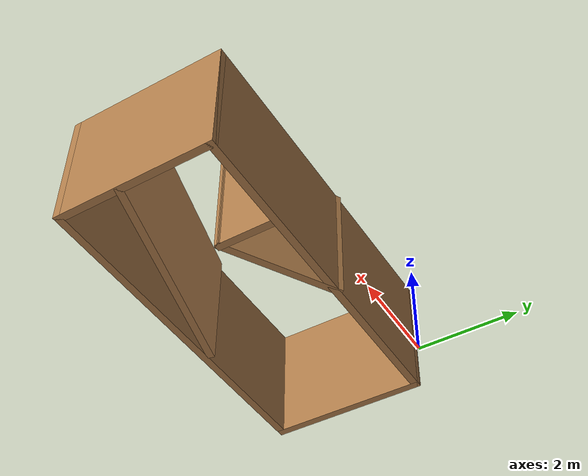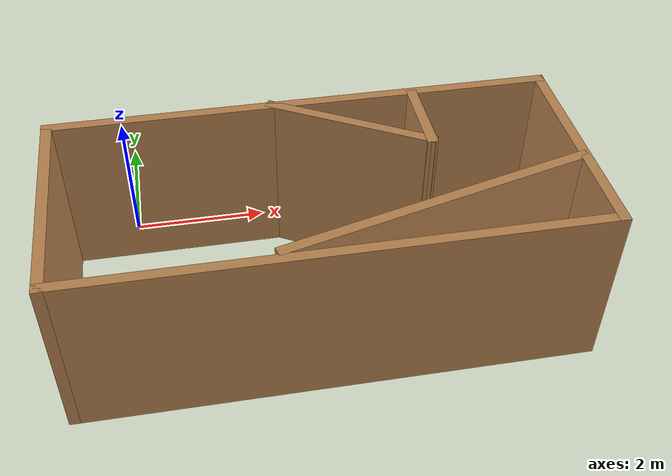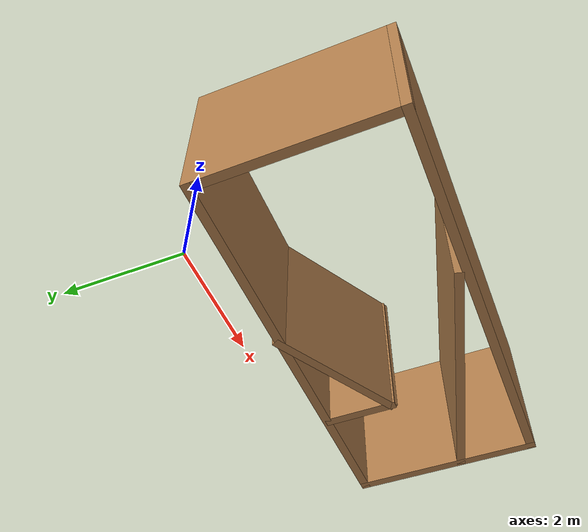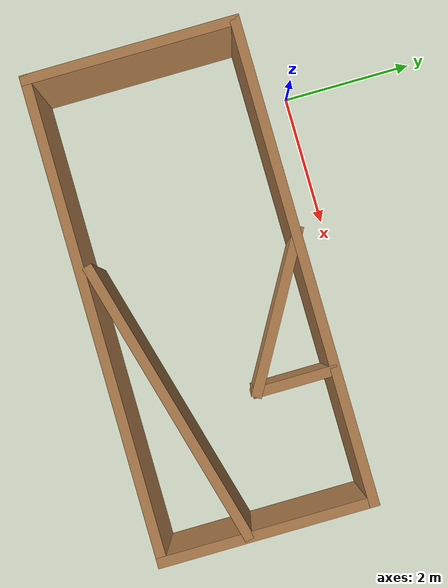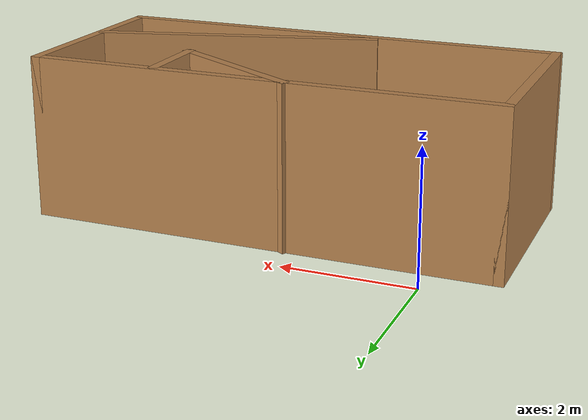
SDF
<?xml version='1.0'?>
<sdf version='1.7'>
  <model name='room4'>
    <pose>2.58 -1.8675 0 0 -0 0</pose>
    <link name='Wall_0'>
      <collision name='Wall_0_Collision'>
        <geometry>
          <box>
            <size>7.25 0.15 2.5</size>
          </box>
        </geometry>
        <pose>0 0 1.25 0 -0 0</pose>
      </collision>
      <visual name='Wall_0_Visual'>
        <pose>0 0 1.25 0 -0 0</pose>
        <geometry>
          <box>
            <size>7.25 0.15 2.5</size>
          </box>
        </geometry>
        <material>
          <script>
            <uri>file://media/materials/scripts/gazebo.material</uri>
            <name>Gazebo/Wood</name>
          </script>
          <ambient>1 1 1 1</ambient>
        </material>
        <meta>
          <layer>0</layer>
        </meta>
      </visual>
      <pose>-0 1.3075 0 0 -0 0</pose>
    </link>
    <link name='Wall_12'>
      <collision name='Wall_12_Collision'>
        <geometry>
          <box>
            <size>4.5 0.15 2.5</size>
          </box>
        </geometry>
        <pose>0 0 1.25 0 -0 0</pose>
      </collision>
      <visual name='Wall_12_Visual'>
        <pose>0 0 1.25 0 -0 0</pose>
        <geometry>
          <box>
            <size>4.5 0.15 2.5</size>
          </box>
        </geometry>
        <material>
          <script>
            <uri>file://media/materials/scripts/gazebo.material</uri>
            <name>Gazebo/Wood</name>
          </script>
          <ambient>1 1 1 1</ambient>
        </material>
        <meta>
          <layer>0</layer>
        </meta>
      </visual>
      <pose>1.41037 -1.09408 0 0 -0 -2.87979</pose>
    </link>
    <link name='Wall_3'>
      <collision name='Wall_3_Collision'>
        <geometry>
          <box>
            <size>3.25 0.15 2.5</size>
          </box>
        </geometry>
        <pose>0 0 1.25 0 -0 0</pose>
      </collision>
      <visual name='Wall_3_Visual'>
        <pose>0 0 1.25 0 -0 0</pose>
        <geometry>
          <box>
            <size>3.25 0.15 2.5</size>
          </box>
        </geometry>
        <material>
          <script>
            <uri>file://media/materials/scripts/gazebo.material</uri>
            <name>Gazebo/Wood</name>
          </script>
          <ambient>1 1 1 1</ambient>
        </material>
        <meta>
          <layer>0</layer>
        </meta>
      </visual>
      <pose>3.55 -0.2425 0 0 -0 -1.5708</pose>
    </link>
    <link name='Wall_4'>
      <collision name='Wall_4_Collision'>
        <geometry>
          <box>
            <size>7.25 0.15 2.5</size>
          </box>
        </geometry>
        <pose>0 0 1.25 0 -0 0</pose>
      </collision>
      <visual name='Wall_4_Visual'>
        <pose>0 0 1.25 0 -0 0</pose>
        <geometry>
          <box>
            <size>7.25 0.15 2.5</size>
          </box>
        </geometry>
        <material>
          <script>
            <uri>file://media/materials/scripts/gazebo.material</uri>
            <name>Gazebo/Wood</name>
          </script>
          <ambient>1 1 1 1</ambient>
        </material>
        <meta>
          <layer>0</layer>
        </meta>
      </visual>
      <pose>-0 -1.7925 0 0 -0 3.14159</pose>
    </link>
    <link name='Wall_5'>
      <collision name='Wall_5_Collision'>
        <geometry>
          <box>
            <size>3.25 0.15 2.5</size>
          </box>
        </geometry>
        <pose>0 0 1.25 0 -0 0</pose>
      </collision>
      <visual name='Wall_5_Visual'>
        <pose>0 0 1.25 0 -0 0</pose>
        <geometry>
          <box>
            <size>3.25 0.15 2.5</size>
          </box>
        </geometry>
        <material>
          <script>
            <uri>file://media/materials/scripts/gazebo.material</uri>
            <name>Gazebo/Wood</name>
          </script>
          <ambient>1 1 1 1</ambient>
        </material>
        <meta>
          <layer>0</layer>
        </meta>
      </visual>
      <pose>-3.55 -0.2425 0 0 -0 1.5708</pose>
    </link>
    <link name='Wall_7'>
      <collision name='Wall_7_Collision'>
        <geometry>
          <box>
            <size>1.25 0.15 2.5</size>
          </box>
        </geometry>
        <pose>0 0 1.25 0 -0 0</pose>
      </collision>
      <visual name='Wall_7_Visual'>
        <pose>0 0 1.25 0 -0 0</pose>
        <geometry>
          <box>
            <size>1.25 0.15 2.5</size>
          </box>
        </geometry>
        <material>
          <script>
            <uri>file://media/materials/scripts/gazebo.material</uri>
            <name>Gazebo/Wood</name>
          </script>
          <ambient>1 1 1 1</ambient>
        </material>
        <meta>
          <layer>0</layer>
        </meta>
      </visual>
      <pose>1.62058 0.708959 0 0 -0 -1.5708</pose>
    </link>
    <link name='Wall_8'>
      <collision name='Wall_8_Collision'>
        <geometry>
          <box>
            <size>2.5 0.15 2.5</size>
          </box>
        </geometry>
        <pose>0 0 1.25 0 -0 0</pose>
      </collision>
      <visual name='Wall_8_Visual'>
        <pose>0 0 1.25 0 -0 0</pose>
        <geometry>
          <box>
            <size>2.5 0.15 2.5</size>
          </box>
        </geometry>
        <material>
          <script>
            <uri>file://media/materials/scripts/gazebo.material</uri>
            <name>Gazebo/Wood</name>
          </script>
          <ambient>1 1 1 1</ambient>
        </material>
        <meta>
          <layer>0</layer>
        </meta>
      </visual>
      <pose>0.603 0.746459 0 0 -0 2.61799</pose>
    </link>
    <static>1</static>
  </model>
</sdf>
